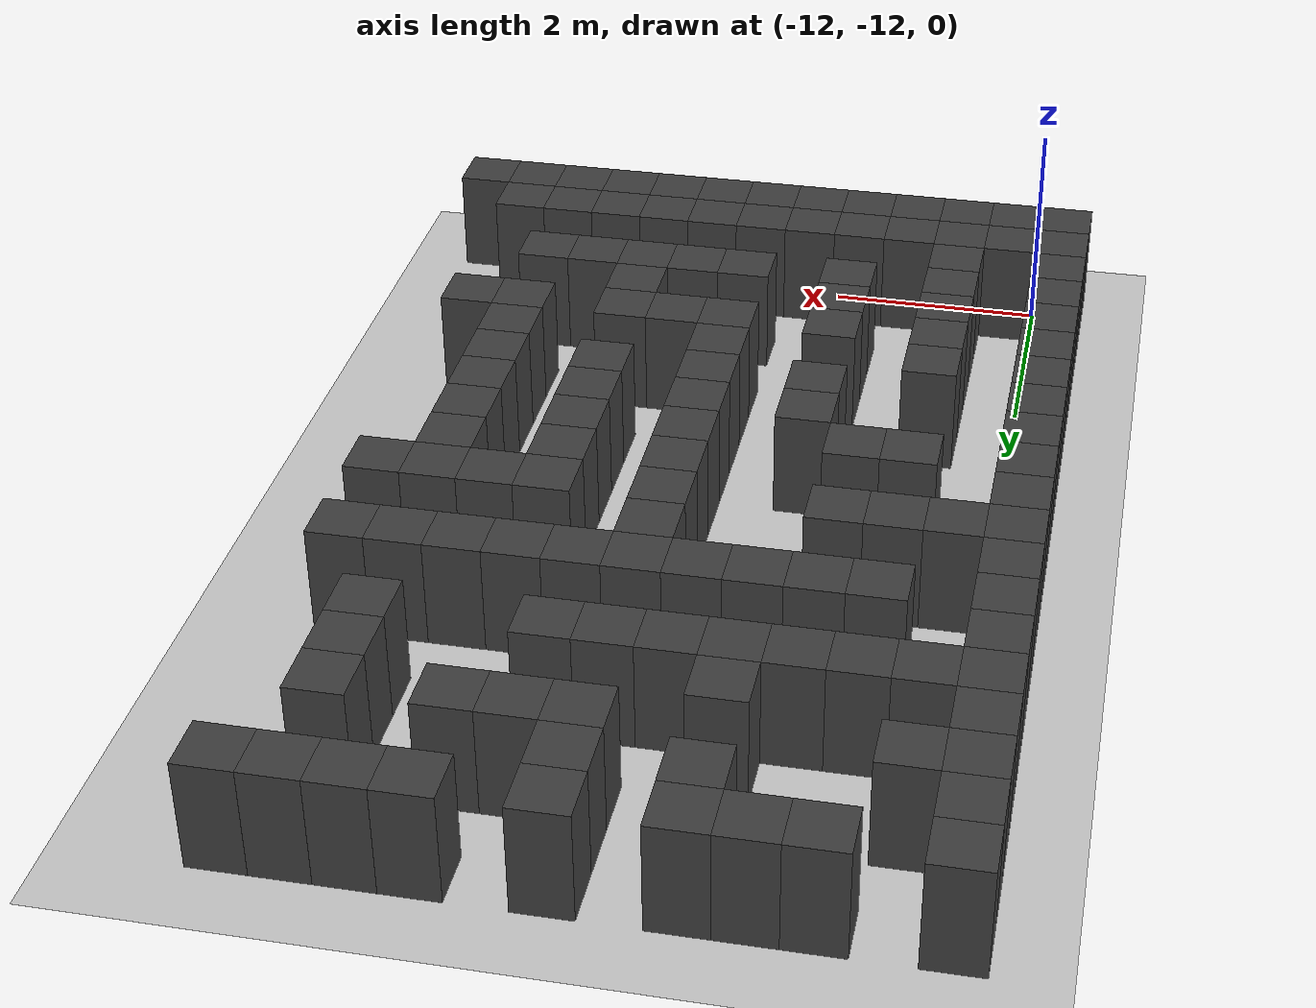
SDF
<sdf version="1.7">
 <world name="map_16668">
  <model name="ground_plane">
   <static>true</static>
   <link name="link">
    <collision name="collision">
     <geometry><plane><normal>0 0 1</normal><size>200 200</size></plane></geometry>
    </collision>
    <visual name="visual">
     <geometry><plane><normal>0 0 1</normal><size>200 200</size></plane></geometry>
     <material><ambient>0.8 0.8 0.8 1</ambient><diffuse>0.8 0.8 0.8 1</diffuse></material>
    </visual>
   </link>
  </model>
  <model name="maze_environment">
   <static>true</static>
   <link name="wall_716">
    <pose>-12.250 -2.750 0.500 0 0 0</pose>
    <collision name="col"><geometry><box><size>0.5 0.5 1.0</size></box></geometry></collision>
    <visual name="vis">
     <geometry><box><size>0.5 0.5 1.0</size></box></geometry>
     <material><ambient>0.15 0.15 0.15 1</ambient><diffuse>0.25 0.25 0.25 1</diffuse></material>
    </visual>
   </link>
   <link name="wall_717">
    <pose>-11.250 -2.750 0.500 0 0 0</pose>
    <collision name="col"><geometry><box><size>0.5 0.5 1.0</size></box></geometry></collision>
    <visual name="vis">
     <geometry><box><size>0.5 0.5 1.0</size></box></geometry>
     <material><ambient>0.15 0.15 0.15 1</ambient><diffuse>0.25 0.25 0.25 1</diffuse></material>
    </visual>
   </link>
   <link name="wall_718">
    <pose>-10.750 -2.750 0.500 0 0 0</pose>
    <collision name="col"><geometry><box><size>0.5 0.5 1.0</size></box></geometry></collision>
    <visual name="vis">
     <geometry><box><size>0.5 0.5 1.0</size></box></geometry>
     <material><ambient>0.15 0.15 0.15 1</ambient><diffuse>0.25 0.25 0.25 1</diffuse></material>
    </visual>
   </link>
   <link name="wall_719">
    <pose>-10.250 -2.750 0.500 0 0 0</pose>
    <collision name="col"><geometry><box><size>0.5 0.5 1.0</size></box></geometry></collision>
    <visual name="vis">
     <geometry><box><size>0.5 0.5 1.0</size></box></geometry>
     <material><ambient>0.15 0.15 0.15 1</ambient><diffuse>0.25 0.25 0.25 1</diffuse></material>
    </visual>
   </link>
   <link name="wall_720">
    <pose>-9.250 -2.750 0.500 0 0 0</pose>
    <collision name="col"><geometry><box><size>0.5 0.5 1.0</size></box></geometry></collision>
    <visual name="vis">
     <geometry><box><size>0.5 0.5 1.0</size></box></geometry>
     <material><ambient>0.15 0.15 0.15 1</ambient><diffuse>0.25 0.25 0.25 1</diffuse></material>
    </visual>
   </link>
   <link name="wall_721">
    <pose>-8.250 -2.750 0.500 0 0 0</pose>
    <collision name="col"><geometry><box><size>0.5 0.5 1.0</size></box></geometry></collision>
    <visual name="vis">
     <geometry><box><size>0.5 0.5 1.0</size></box></geometry>
     <material><ambient>0.15 0.15 0.15 1</ambient><diffuse>0.25 0.25 0.25 1</diffuse></material>
    </visual>
   </link>
   <link name="wall_722">
    <pose>-7.750 -2.750 0.500 0 0 0</pose>
    <collision name="col"><geometry><box><size>0.5 0.5 1.0</size></box></geometry></collision>
    <visual name="vis">
     <geometry><box><size>0.5 0.5 1.0</size></box></geometry>
     <material><ambient>0.15 0.15 0.15 1</ambient><diffuse>0.25 0.25 0.25 1</diffuse></material>
    </visual>
   </link>
   <link name="wall_723">
    <pose>-7.250 -2.750 0.500 0 0 0</pose>
    <collision name="col"><geometry><box><size>0.5 0.5 1.0</size></box></geometry></collision>
    <visual name="vis">
     <geometry><box><size>0.5 0.5 1.0</size></box></geometry>
     <material><ambient>0.15 0.15 0.15 1</ambient><diffuse>0.25 0.25 0.25 1</diffuse></material>
    </visual>
   </link>
   <link name="wall_724">
    <pose>-6.750 -2.750 0.500 0 0 0</pose>
    <collision name="col"><geometry><box><size>0.5 0.5 1.0</size></box></geometry></collision>
    <visual name="vis">
     <geometry><box><size>0.5 0.5 1.0</size></box></geometry>
     <material><ambient>0.15 0.15 0.15 1</ambient><diffuse>0.25 0.25 0.25 1</diffuse></material>
    </visual>
   </link>
   <link name="wall_753">
    <pose>-12.250 -3.250 0.500 0 0 0</pose>
    <collision name="col"><geometry><box><size>0.5 0.5 1.0</size></box></geometry></collision>
    <visual name="vis">
     <geometry><box><size>0.5 0.5 1.0</size></box></geometry>
     <material><ambient>0.15 0.15 0.15 1</ambient><diffuse>0.25 0.25 0.25 1</diffuse></material>
    </visual>
   </link>
   <link name="wall_754">
    <pose>-10.250 -3.250 0.500 0 0 0</pose>
    <collision name="col"><geometry><box><size>0.5 0.5 1.0</size></box></geometry></collision>
    <visual name="vis">
     <geometry><box><size>0.5 0.5 1.0</size></box></geometry>
     <material><ambient>0.15 0.15 0.15 1</ambient><diffuse>0.25 0.25 0.25 1</diffuse></material>
    </visual>
   </link>
   <link name="wall_755">
    <pose>-9.250 -3.250 0.500 0 0 0</pose>
    <collision name="col"><geometry><box><size>0.5 0.5 1.0</size></box></geometry></collision>
    <visual name="vis">
     <geometry><box><size>0.5 0.5 1.0</size></box></geometry>
     <material><ambient>0.15 0.15 0.15 1</ambient><diffuse>0.25 0.25 0.25 1</diffuse></material>
    </visual>
   </link>
   <link name="wall_765">
    <pose>-12.250 -3.750 0.500 0 0 0</pose>
    <collision name="col"><geometry><box><size>0.5 0.5 1.0</size></box></geometry></collision>
    <visual name="vis">
     <geometry><box><size>0.5 0.5 1.0</size></box></geometry>
     <material><ambient>0.15 0.15 0.15 1</ambient><diffuse>0.25 0.25 0.25 1</diffuse></material>
    </visual>
   </link>
   <link name="wall_766">
    <pose>-11.750 -3.750 0.500 0 0 0</pose>
    <collision name="col"><geometry><box><size>0.5 0.5 1.0</size></box></geometry></collision>
    <visual name="vis">
     <geometry><box><size>0.5 0.5 1.0</size></box></geometry>
     <material><ambient>0.15 0.15 0.15 1</ambient><diffuse>0.25 0.25 0.25 1</diffuse></material>
    </visual>
   </link>
   <link name="wall_767">
    <pose>-9.250 -3.750 0.500 0 0 0</pose>
    <collision name="col"><geometry><box><size>0.5 0.5 1.0</size></box></geometry></collision>
    <visual name="vis">
     <geometry><box><size>0.5 0.5 1.0</size></box></geometry>
     <material><ambient>0.15 0.15 0.15 1</ambient><diffuse>0.25 0.25 0.25 1</diffuse></material>
    </visual>
   </link>
   <link name="wall_768">
    <pose>-8.750 -3.750 0.500 0 0 0</pose>
    <collision name="col"><geometry><box><size>0.5 0.5 1.0</size></box></geometry></collision>
    <visual name="vis">
     <geometry><box><size>0.5 0.5 1.0</size></box></geometry>
     <material><ambient>0.15 0.15 0.15 1</ambient><diffuse>0.25 0.25 0.25 1</diffuse></material>
    </visual>
   </link>
   <link name="wall_769">
    <pose>-8.250 -3.750 0.500 0 0 0</pose>
    <collision name="col"><geometry><box><size>0.5 0.5 1.0</size></box></geometry></collision>
    <visual name="vis">
     <geometry><box><size>0.5 0.5 1.0</size></box></geometry>
     <material><ambient>0.15 0.15 0.15 1</ambient><diffuse>0.25 0.25 0.25 1</diffuse></material>
    </visual>
   </link>
   <link name="wall_770">
    <pose>-7.250 -3.750 0.500 0 0 0</pose>
    <collision name="col"><geometry><box><size>0.5 0.5 1.0</size></box></geometry></collision>
    <visual name="vis">
     <geometry><box><size>0.5 0.5 1.0</size></box></geometry>
     <material><ambient>0.15 0.15 0.15 1</ambient><diffuse>0.25 0.25 0.25 1</diffuse></material>
    </visual>
   </link>
   <link name="wall_801">
    <pose>-12.250 -4.250 0.500 0 0 0</pose>
    <collision name="col"><geometry><box><size>0.5 0.5 1.0</size></box></geometry></collision>
    <visual name="vis">
     <geometry><box><size>0.5 0.5 1.0</size></box></geometry>
     <material><ambient>0.15 0.15 0.15 1</ambient><diffuse>0.25 0.25 0.25 1</diffuse></material>
    </visual>
   </link>
   <link name="wall_802">
    <pose>-10.250 -4.250 0.500 0 0 0</pose>
    <collision name="col"><geometry><box><size>0.5 0.5 1.0</size></box></geometry></collision>
    <visual name="vis">
     <geometry><box><size>0.5 0.5 1.0</size></box></geometry>
     <material><ambient>0.15 0.15 0.15 1</ambient><diffuse>0.25 0.25 0.25 1</diffuse></material>
    </visual>
   </link>
   <link name="wall_803">
    <pose>-7.250 -4.250 0.500 0 0 0</pose>
    <collision name="col"><geometry><box><size>0.5 0.5 1.0</size></box></geometry></collision>
    <visual name="vis">
     <geometry><box><size>0.5 0.5 1.0</size></box></geometry>
     <material><ambient>0.15 0.15 0.15 1</ambient><diffuse>0.25 0.25 0.25 1</diffuse></material>
    </visual>
   </link>
   <link name="wall_813">
    <pose>-12.250 -4.750 0.500 0 0 0</pose>
    <collision name="col"><geometry><box><size>0.5 0.5 1.0</size></box></geometry></collision>
    <visual name="vis">
     <geometry><box><size>0.5 0.5 1.0</size></box></geometry>
     <material><ambient>0.15 0.15 0.15 1</ambient><diffuse>0.25 0.25 0.25 1</diffuse></material>
    </visual>
   </link>
   <link name="wall_814">
    <pose>-11.750 -4.750 0.500 0 0 0</pose>
    <collision name="col"><geometry><box><size>0.5 0.5 1.0</size></box></geometry></collision>
    <visual name="vis">
     <geometry><box><size>0.5 0.5 1.0</size></box></geometry>
     <material><ambient>0.15 0.15 0.15 1</ambient><diffuse>0.25 0.25 0.25 1</diffuse></material>
    </visual>
   </link>
   <link name="wall_815">
    <pose>-11.250 -4.750 0.500 0 0 0</pose>
    <collision name="col"><geometry><box><size>0.5 0.5 1.0</size></box></geometry></collision>
    <visual name="vis">
     <geometry><box><size>0.5 0.5 1.0</size></box></geometry>
     <material><ambient>0.15 0.15 0.15 1</ambient><diffuse>0.25 0.25 0.25 1</diffuse></material>
    </visual>
   </link>
   <link name="wall_816">
    <pose>-10.750 -4.750 0.500 0 0 0</pose>
    <collision name="col"><geometry><box><size>0.5 0.5 1.0</size></box></geometry></collision>
    <visual name="vis">
     <geometry><box><size>0.5 0.5 1.0</size></box></geometry>
     <material><ambient>0.15 0.15 0.15 1</ambient><diffuse>0.25 0.25 0.25 1</diffuse></material>
    </visual>
   </link>
   <link name="wall_817">
    <pose>-10.250 -4.750 0.500 0 0 0</pose>
    <collision name="col"><geometry><box><size>0.5 0.5 1.0</size></box></geometry></collision>
    <visual name="vis">
     <geometry><box><size>0.5 0.5 1.0</size></box></geometry>
     <material><ambient>0.15 0.15 0.15 1</ambient><diffuse>0.25 0.25 0.25 1</diffuse></material>
    </visual>
   </link>
   <link name="wall_818">
    <pose>-9.750 -4.750 0.500 0 0 0</pose>
    <collision name="col"><geometry><box><size>0.5 0.5 1.0</size></box></geometry></collision>
    <visual name="vis">
     <geometry><box><size>0.5 0.5 1.0</size></box></geometry>
     <material><ambient>0.15 0.15 0.15 1</ambient><diffuse>0.25 0.25 0.25 1</diffuse></material>
    </visual>
   </link>
   <link name="wall_819">
    <pose>-9.250 -4.750 0.500 0 0 0</pose>
    <collision name="col"><geometry><box><size>0.5 0.5 1.0</size></box></geometry></collision>
    <visual name="vis">
     <geometry><box><size>0.5 0.5 1.0</size></box></geometry>
     <material><ambient>0.15 0.15 0.15 1</ambient><diffuse>0.25 0.25 0.25 1</diffuse></material>
    </visual>
   </link>
   <link name="wall_820">
    <pose>-8.750 -4.750 0.500 0 0 0</pose>
    <collision name="col"><geometry><box><size>0.5 0.5 1.0</size></box></geometry></collision>
    <visual name="vis">
     <geometry><box><size>0.5 0.5 1.0</size></box></geometry>
     <material><ambient>0.15 0.15 0.15 1</ambient><diffuse>0.25 0.25 0.25 1</diffuse></material>
    </visual>
   </link>
   <link name="wall_821">
    <pose>-7.250 -4.750 0.500 0 0 0</pose>
    <collision name="col"><geometry><box><size>0.5 0.5 1.0</size></box></geometry></collision>
    <visual name="vis">
     <geometry><box><size>0.5 0.5 1.0</size></box></geometry>
     <material><ambient>0.15 0.15 0.15 1</ambient><diffuse>0.25 0.25 0.25 1</diffuse></material>
    </visual>
   </link>
   <link name="wall_847">
    <pose>-12.250 -5.250 0.500 0 0 0</pose>
    <collision name="col"><geometry><box><size>0.5 0.5 1.0</size></box></geometry></collision>
    <visual name="vis">
     <geometry><box><size>0.5 0.5 1.0</size></box></geometry>
     <material><ambient>0.15 0.15 0.15 1</ambient><diffuse>0.25 0.25 0.25 1</diffuse></material>
    </visual>
   </link>
   <link name="wall_863">
    <pose>-12.250 -5.750 0.500 0 0 0</pose>
    <collision name="col"><geometry><box><size>0.5 0.5 1.0</size></box></geometry></collision>
    <visual name="vis">
     <geometry><box><size>0.5 0.5 1.0</size></box></geometry>
     <material><ambient>0.15 0.15 0.15 1</ambient><diffuse>0.25 0.25 0.25 1</diffuse></material>
    </visual>
   </link>
   <link name="wall_864">
    <pose>-11.250 -5.750 0.500 0 0 0</pose>
    <collision name="col"><geometry><box><size>0.5 0.5 1.0</size></box></geometry></collision>
    <visual name="vis">
     <geometry><box><size>0.5 0.5 1.0</size></box></geometry>
     <material><ambient>0.15 0.15 0.15 1</ambient><diffuse>0.25 0.25 0.25 1</diffuse></material>
    </visual>
   </link>
   <link name="wall_865">
    <pose>-10.750 -5.750 0.500 0 0 0</pose>
    <collision name="col"><geometry><box><size>0.5 0.5 1.0</size></box></geometry></collision>
    <visual name="vis">
     <geometry><box><size>0.5 0.5 1.0</size></box></geometry>
     <material><ambient>0.15 0.15 0.15 1</ambient><diffuse>0.25 0.25 0.25 1</diffuse></material>
    </visual>
   </link>
   <link name="wall_866">
    <pose>-10.250 -5.750 0.500 0 0 0</pose>
    <collision name="col"><geometry><box><size>0.5 0.5 1.0</size></box></geometry></collision>
    <visual name="vis">
     <geometry><box><size>0.5 0.5 1.0</size></box></geometry>
     <material><ambient>0.15 0.15 0.15 1</ambient><diffuse>0.25 0.25 0.25 1</diffuse></material>
    </visual>
   </link>
   <link name="wall_867">
    <pose>-9.750 -5.750 0.500 0 0 0</pose>
    <collision name="col"><geometry><box><size>0.5 0.5 1.0</size></box></geometry></collision>
    <visual name="vis">
     <geometry><box><size>0.5 0.5 1.0</size></box></geometry>
     <material><ambient>0.15 0.15 0.15 1</ambient><diffuse>0.25 0.25 0.25 1</diffuse></material>
    </visual>
   </link>
   <link name="wall_868">
    <pose>-9.250 -5.750 0.500 0 0 0</pose>
    <collision name="col"><geometry><box><size>0.5 0.5 1.0</size></box></geometry></collision>
    <visual name="vis">
     <geometry><box><size>0.5 0.5 1.0</size></box></geometry>
     <material><ambient>0.15 0.15 0.15 1</ambient><diffuse>0.25 0.25 0.25 1</diffuse></material>
    </visual>
   </link>
   <link name="wall_869">
    <pose>-8.750 -5.750 0.500 0 0 0</pose>
    <collision name="col"><geometry><box><size>0.5 0.5 1.0</size></box></geometry></collision>
    <visual name="vis">
     <geometry><box><size>0.5 0.5 1.0</size></box></geometry>
     <material><ambient>0.15 0.15 0.15 1</ambient><diffuse>0.25 0.25 0.25 1</diffuse></material>
    </visual>
   </link>
   <link name="wall_870">
    <pose>-8.250 -5.750 0.500 0 0 0</pose>
    <collision name="col"><geometry><box><size>0.5 0.5 1.0</size></box></geometry></collision>
    <visual name="vis">
     <geometry><box><size>0.5 0.5 1.0</size></box></geometry>
     <material><ambient>0.15 0.15 0.15 1</ambient><diffuse>0.25 0.25 0.25 1</diffuse></material>
    </visual>
   </link>
   <link name="wall_871">
    <pose>-7.750 -5.750 0.500 0 0 0</pose>
    <collision name="col"><geometry><box><size>0.5 0.5 1.0</size></box></geometry></collision>
    <visual name="vis">
     <geometry><box><size>0.5 0.5 1.0</size></box></geometry>
     <material><ambient>0.15 0.15 0.15 1</ambient><diffuse>0.25 0.25 0.25 1</diffuse></material>
    </visual>
   </link>
   <link name="wall_872">
    <pose>-7.250 -5.750 0.500 0 0 0</pose>
    <collision name="col"><geometry><box><size>0.5 0.5 1.0</size></box></geometry></collision>
    <visual name="vis">
     <geometry><box><size>0.5 0.5 1.0</size></box></geometry>
     <material><ambient>0.15 0.15 0.15 1</ambient><diffuse>0.25 0.25 0.25 1</diffuse></material>
    </visual>
   </link>
   <link name="wall_873">
    <pose>-6.750 -5.750 0.500 0 0 0</pose>
    <collision name="col"><geometry><box><size>0.5 0.5 1.0</size></box></geometry></collision>
    <visual name="vis">
     <geometry><box><size>0.5 0.5 1.0</size></box></geometry>
     <material><ambient>0.15 0.15 0.15 1</ambient><diffuse>0.25 0.25 0.25 1</diffuse></material>
    </visual>
   </link>
   <link name="wall_895">
    <pose>-12.250 -6.250 0.500 0 0 0</pose>
    <collision name="col"><geometry><box><size>0.5 0.5 1.0</size></box></geometry></collision>
    <visual name="vis">
     <geometry><box><size>0.5 0.5 1.0</size></box></geometry>
     <material><ambient>0.15 0.15 0.15 1</ambient><diffuse>0.25 0.25 0.25 1</diffuse></material>
    </visual>
   </link>
   <link name="wall_896">
    <pose>-9.250 -6.250 0.500 0 0 0</pose>
    <collision name="col"><geometry><box><size>0.5 0.5 1.0</size></box></geometry></collision>
    <visual name="vis">
     <geometry><box><size>0.5 0.5 1.0</size></box></geometry>
     <material><ambient>0.15 0.15 0.15 1</ambient><diffuse>0.25 0.25 0.25 1</diffuse></material>
    </visual>
   </link>
   <link name="wall_910">
    <pose>-12.250 -6.750 0.500 0 0 0</pose>
    <collision name="col"><geometry><box><size>0.5 0.5 1.0</size></box></geometry></collision>
    <visual name="vis">
     <geometry><box><size>0.5 0.5 1.0</size></box></geometry>
     <material><ambient>0.15 0.15 0.15 1</ambient><diffuse>0.25 0.25 0.25 1</diffuse></material>
    </visual>
   </link>
   <link name="wall_911">
    <pose>-11.750 -6.750 0.500 0 0 0</pose>
    <collision name="col"><geometry><box><size>0.5 0.5 1.0</size></box></geometry></collision>
    <visual name="vis">
     <geometry><box><size>0.5 0.5 1.0</size></box></geometry>
     <material><ambient>0.15 0.15 0.15 1</ambient><diffuse>0.25 0.25 0.25 1</diffuse></material>
    </visual>
   </link>
   <link name="wall_912">
    <pose>-11.250 -6.750 0.500 0 0 0</pose>
    <collision name="col"><geometry><box><size>0.5 0.5 1.0</size></box></geometry></collision>
    <visual name="vis">
     <geometry><box><size>0.5 0.5 1.0</size></box></geometry>
     <material><ambient>0.15 0.15 0.15 1</ambient><diffuse>0.25 0.25 0.25 1</diffuse></material>
    </visual>
   </link>
   <link name="wall_913">
    <pose>-10.750 -6.750 0.500 0 0 0</pose>
    <collision name="col"><geometry><box><size>0.5 0.5 1.0</size></box></geometry></collision>
    <visual name="vis">
     <geometry><box><size>0.5 0.5 1.0</size></box></geometry>
     <material><ambient>0.15 0.15 0.15 1</ambient><diffuse>0.25 0.25 0.25 1</diffuse></material>
    </visual>
   </link>
   <link name="wall_914">
    <pose>-9.250 -6.750 0.500 0 0 0</pose>
    <collision name="col"><geometry><box><size>0.5 0.5 1.0</size></box></geometry></collision>
    <visual name="vis">
     <geometry><box><size>0.5 0.5 1.0</size></box></geometry>
     <material><ambient>0.15 0.15 0.15 1</ambient><diffuse>0.25 0.25 0.25 1</diffuse></material>
    </visual>
   </link>
   <link name="wall_915">
    <pose>-8.250 -6.750 0.500 0 0 0</pose>
    <collision name="col"><geometry><box><size>0.5 0.5 1.0</size></box></geometry></collision>
    <visual name="vis">
     <geometry><box><size>0.5 0.5 1.0</size></box></geometry>
     <material><ambient>0.15 0.15 0.15 1</ambient><diffuse>0.25 0.25 0.25 1</diffuse></material>
    </visual>
   </link>
   <link name="wall_916">
    <pose>-7.750 -6.750 0.500 0 0 0</pose>
    <collision name="col"><geometry><box><size>0.5 0.5 1.0</size></box></geometry></collision>
    <visual name="vis">
     <geometry><box><size>0.5 0.5 1.0</size></box></geometry>
     <material><ambient>0.15 0.15 0.15 1</ambient><diffuse>0.25 0.25 0.25 1</diffuse></material>
    </visual>
   </link>
   <link name="wall_917">
    <pose>-7.250 -6.750 0.500 0 0 0</pose>
    <collision name="col"><geometry><box><size>0.5 0.5 1.0</size></box></geometry></collision>
    <visual name="vis">
     <geometry><box><size>0.5 0.5 1.0</size></box></geometry>
     <material><ambient>0.15 0.15 0.15 1</ambient><diffuse>0.25 0.25 0.25 1</diffuse></material>
    </visual>
   </link>
   <link name="wall_918">
    <pose>-6.750 -6.750 0.500 0 0 0</pose>
    <collision name="col"><geometry><box><size>0.5 0.5 1.0</size></box></geometry></collision>
    <visual name="vis">
     <geometry><box><size>0.5 0.5 1.0</size></box></geometry>
     <material><ambient>0.15 0.15 0.15 1</ambient><diffuse>0.25 0.25 0.25 1</diffuse></material>
    </visual>
   </link>
   <link name="wall_941">
    <pose>-12.250 -7.250 0.500 0 0 0</pose>
    <collision name="col"><geometry><box><size>0.5 0.5 1.0</size></box></geometry></collision>
    <visual name="vis">
     <geometry><box><size>0.5 0.5 1.0</size></box></geometry>
     <material><ambient>0.15 0.15 0.15 1</ambient><diffuse>0.25 0.25 0.25 1</diffuse></material>
    </visual>
   </link>
   <link name="wall_942">
    <pose>-9.250 -7.250 0.500 0 0 0</pose>
    <collision name="col"><geometry><box><size>0.5 0.5 1.0</size></box></geometry></collision>
    <visual name="vis">
     <geometry><box><size>0.5 0.5 1.0</size></box></geometry>
     <material><ambient>0.15 0.15 0.15 1</ambient><diffuse>0.25 0.25 0.25 1</diffuse></material>
    </visual>
   </link>
   <link name="wall_943">
    <pose>-8.250 -7.250 0.500 0 0 0</pose>
    <collision name="col"><geometry><box><size>0.5 0.5 1.0</size></box></geometry></collision>
    <visual name="vis">
     <geometry><box><size>0.5 0.5 1.0</size></box></geometry>
     <material><ambient>0.15 0.15 0.15 1</ambient><diffuse>0.25 0.25 0.25 1</diffuse></material>
    </visual>
   </link>
   <link name="wall_944">
    <pose>-7.250 -7.250 0.500 0 0 0</pose>
    <collision name="col"><geometry><box><size>0.5 0.5 1.0</size></box></geometry></collision>
    <visual name="vis">
     <geometry><box><size>0.5 0.5 1.0</size></box></geometry>
     <material><ambient>0.15 0.15 0.15 1</ambient><diffuse>0.25 0.25 0.25 1</diffuse></material>
    </visual>
   </link>
   <link name="wall_956">
    <pose>-12.250 -7.750 0.500 0 0 0</pose>
    <collision name="col"><geometry><box><size>0.5 0.5 1.0</size></box></geometry></collision>
    <visual name="vis">
     <geometry><box><size>0.5 0.5 1.0</size></box></geometry>
     <material><ambient>0.15 0.15 0.15 1</ambient><diffuse>0.25 0.25 0.25 1</diffuse></material>
    </visual>
   </link>
   <link name="wall_957">
    <pose>-11.250 -7.750 0.500 0 0 0</pose>
    <collision name="col"><geometry><box><size>0.5 0.5 1.0</size></box></geometry></collision>
    <visual name="vis">
     <geometry><box><size>0.5 0.5 1.0</size></box></geometry>
     <material><ambient>0.15 0.15 0.15 1</ambient><diffuse>0.25 0.25 0.25 1</diffuse></material>
    </visual>
   </link>
   <link name="wall_958">
    <pose>-10.750 -7.750 0.500 0 0 0</pose>
    <collision name="col"><geometry><box><size>0.5 0.5 1.0</size></box></geometry></collision>
    <visual name="vis">
     <geometry><box><size>0.5 0.5 1.0</size></box></geometry>
     <material><ambient>0.15 0.15 0.15 1</ambient><diffuse>0.25 0.25 0.25 1</diffuse></material>
    </visual>
   </link>
   <link name="wall_959">
    <pose>-9.250 -7.750 0.500 0 0 0</pose>
    <collision name="col"><geometry><box><size>0.5 0.5 1.0</size></box></geometry></collision>
    <visual name="vis">
     <geometry><box><size>0.5 0.5 1.0</size></box></geometry>
     <material><ambient>0.15 0.15 0.15 1</ambient><diffuse>0.25 0.25 0.25 1</diffuse></material>
    </visual>
   </link>
   <link name="wall_960">
    <pose>-8.250 -7.750 0.500 0 0 0</pose>
    <collision name="col"><geometry><box><size>0.5 0.5 1.0</size></box></geometry></collision>
    <visual name="vis">
     <geometry><box><size>0.5 0.5 1.0</size></box></geometry>
     <material><ambient>0.15 0.15 0.15 1</ambient><diffuse>0.25 0.25 0.25 1</diffuse></material>
    </visual>
   </link>
   <link name="wall_961">
    <pose>-7.250 -7.750 0.500 0 0 0</pose>
    <collision name="col"><geometry><box><size>0.5 0.5 1.0</size></box></geometry></collision>
    <visual name="vis">
     <geometry><box><size>0.5 0.5 1.0</size></box></geometry>
     <material><ambient>0.15 0.15 0.15 1</ambient><diffuse>0.25 0.25 0.25 1</diffuse></material>
    </visual>
   </link>
   <link name="wall_991">
    <pose>-12.250 -8.250 0.500 0 0 0</pose>
    <collision name="col"><geometry><box><size>0.5 0.5 1.0</size></box></geometry></collision>
    <visual name="vis">
     <geometry><box><size>0.5 0.5 1.0</size></box></geometry>
     <material><ambient>0.15 0.15 0.15 1</ambient><diffuse>0.25 0.25 0.25 1</diffuse></material>
    </visual>
   </link>
   <link name="wall_992">
    <pose>-10.250 -8.250 0.500 0 0 0</pose>
    <collision name="col"><geometry><box><size>0.5 0.5 1.0</size></box></geometry></collision>
    <visual name="vis">
     <geometry><box><size>0.5 0.5 1.0</size></box></geometry>
     <material><ambient>0.15 0.15 0.15 1</ambient><diffuse>0.25 0.25 0.25 1</diffuse></material>
    </visual>
   </link>
   <link name="wall_993">
    <pose>-9.250 -8.250 0.500 0 0 0</pose>
    <collision name="col"><geometry><box><size>0.5 0.5 1.0</size></box></geometry></collision>
    <visual name="vis">
     <geometry><box><size>0.5 0.5 1.0</size></box></geometry>
     <material><ambient>0.15 0.15 0.15 1</ambient><diffuse>0.25 0.25 0.25 1</diffuse></material>
    </visual>
   </link>
   <link name="wall_994">
    <pose>-8.250 -8.250 0.500 0 0 0</pose>
    <collision name="col"><geometry><box><size>0.5 0.5 1.0</size></box></geometry></collision>
    <visual name="vis">
     <geometry><box><size>0.5 0.5 1.0</size></box></geometry>
     <material><ambient>0.15 0.15 0.15 1</ambient><diffuse>0.25 0.25 0.25 1</diffuse></material>
    </visual>
   </link>
   <link name="wall_995">
    <pose>-7.250 -8.250 0.500 0 0 0</pose>
    <collision name="col"><geometry><box><size>0.5 0.5 1.0</size></box></geometry></collision>
    <visual name="vis">
     <geometry><box><size>0.5 0.5 1.0</size></box></geometry>
     <material><ambient>0.15 0.15 0.15 1</ambient><diffuse>0.25 0.25 0.25 1</diffuse></material>
    </visual>
   </link>
   <link name="wall_1006">
    <pose>-12.250 -8.750 0.500 0 0 0</pose>
    <collision name="col"><geometry><box><size>0.5 0.5 1.0</size></box></geometry></collision>
    <visual name="vis">
     <geometry><box><size>0.5 0.5 1.0</size></box></geometry>
     <material><ambient>0.15 0.15 0.15 1</ambient><diffuse>0.25 0.25 0.25 1</diffuse></material>
    </visual>
   </link>
   <link name="wall_1007">
    <pose>-10.250 -8.750 0.500 0 0 0</pose>
    <collision name="col"><geometry><box><size>0.5 0.5 1.0</size></box></geometry></collision>
    <visual name="vis">
     <geometry><box><size>0.5 0.5 1.0</size></box></geometry>
     <material><ambient>0.15 0.15 0.15 1</ambient><diffuse>0.25 0.25 0.25 1</diffuse></material>
    </visual>
   </link>
   <link name="wall_1008">
    <pose>-9.250 -8.750 0.500 0 0 0</pose>
    <collision name="col"><geometry><box><size>0.5 0.5 1.0</size></box></geometry></collision>
    <visual name="vis">
     <geometry><box><size>0.5 0.5 1.0</size></box></geometry>
     <material><ambient>0.15 0.15 0.15 1</ambient><diffuse>0.25 0.25 0.25 1</diffuse></material>
    </visual>
   </link>
   <link name="wall_1009">
    <pose>-8.250 -8.750 0.500 0 0 0</pose>
    <collision name="col"><geometry><box><size>0.5 0.5 1.0</size></box></geometry></collision>
    <visual name="vis">
     <geometry><box><size>0.5 0.5 1.0</size></box></geometry>
     <material><ambient>0.15 0.15 0.15 1</ambient><diffuse>0.25 0.25 0.25 1</diffuse></material>
    </visual>
   </link>
   <link name="wall_1010">
    <pose>-7.250 -8.750 0.500 0 0 0</pose>
    <collision name="col"><geometry><box><size>0.5 0.5 1.0</size></box></geometry></collision>
    <visual name="vis">
     <geometry><box><size>0.5 0.5 1.0</size></box></geometry>
     <material><ambient>0.15 0.15 0.15 1</ambient><diffuse>0.25 0.25 0.25 1</diffuse></material>
    </visual>
   </link>
   <link name="wall_1040">
    <pose>-12.250 -9.250 0.500 0 0 0</pose>
    <collision name="col"><geometry><box><size>0.5 0.5 1.0</size></box></geometry></collision>
    <visual name="vis">
     <geometry><box><size>0.5 0.5 1.0</size></box></geometry>
     <material><ambient>0.15 0.15 0.15 1</ambient><diffuse>0.25 0.25 0.25 1</diffuse></material>
    </visual>
   </link>
   <link name="wall_1041">
    <pose>-11.250 -9.250 0.500 0 0 0</pose>
    <collision name="col"><geometry><box><size>0.5 0.5 1.0</size></box></geometry></collision>
    <visual name="vis">
     <geometry><box><size>0.5 0.5 1.0</size></box></geometry>
     <material><ambient>0.15 0.15 0.15 1</ambient><diffuse>0.25 0.25 0.25 1</diffuse></material>
    </visual>
   </link>
   <link name="wall_1042">
    <pose>-9.250 -9.250 0.500 0 0 0</pose>
    <collision name="col"><geometry><box><size>0.5 0.5 1.0</size></box></geometry></collision>
    <visual name="vis">
     <geometry><box><size>0.5 0.5 1.0</size></box></geometry>
     <material><ambient>0.15 0.15 0.15 1</ambient><diffuse>0.25 0.25 0.25 1</diffuse></material>
    </visual>
   </link>
   <link name="wall_1043">
    <pose>-7.250 -9.250 0.500 0 0 0</pose>
    <collision name="col"><geometry><box><size>0.5 0.5 1.0</size></box></geometry></collision>
    <visual name="vis">
     <geometry><box><size>0.5 0.5 1.0</size></box></geometry>
     <material><ambient>0.15 0.15 0.15 1</ambient><diffuse>0.25 0.25 0.25 1</diffuse></material>
    </visual>
   </link>
   <link name="wall_1055">
    <pose>-12.250 -9.750 0.500 0 0 0</pose>
    <collision name="col"><geometry><box><size>0.5 0.5 1.0</size></box></geometry></collision>
    <visual name="vis">
     <geometry><box><size>0.5 0.5 1.0</size></box></geometry>
     <material><ambient>0.15 0.15 0.15 1</ambient><diffuse>0.25 0.25 0.25 1</diffuse></material>
    </visual>
   </link>
   <link name="wall_1056">
    <pose>-11.250 -9.750 0.500 0 0 0</pose>
    <collision name="col"><geometry><box><size>0.5 0.5 1.0</size></box></geometry></collision>
    <visual name="vis">
     <geometry><box><size>0.5 0.5 1.0</size></box></geometry>
     <material><ambient>0.15 0.15 0.15 1</ambient><diffuse>0.25 0.25 0.25 1</diffuse></material>
    </visual>
   </link>
   <link name="wall_1057">
    <pose>-10.250 -9.750 0.500 0 0 0</pose>
    <collision name="col"><geometry><box><size>0.5 0.5 1.0</size></box></geometry></collision>
    <visual name="vis">
     <geometry><box><size>0.5 0.5 1.0</size></box></geometry>
     <material><ambient>0.15 0.15 0.15 1</ambient><diffuse>0.25 0.25 0.25 1</diffuse></material>
    </visual>
   </link>
   <link name="wall_1058">
    <pose>-9.250 -9.750 0.500 0 0 0</pose>
    <collision name="col"><geometry><box><size>0.5 0.5 1.0</size></box></geometry></collision>
    <visual name="vis">
     <geometry><box><size>0.5 0.5 1.0</size></box></geometry>
     <material><ambient>0.15 0.15 0.15 1</ambient><diffuse>0.25 0.25 0.25 1</diffuse></material>
    </visual>
   </link>
   <link name="wall_1059">
    <pose>-8.750 -9.750 0.500 0 0 0</pose>
    <collision name="col"><geometry><box><size>0.5 0.5 1.0</size></box></geometry></collision>
    <visual name="vis">
     <geometry><box><size>0.5 0.5 1.0</size></box></geometry>
     <material><ambient>0.15 0.15 0.15 1</ambient><diffuse>0.25 0.25 0.25 1</diffuse></material>
    </visual>
   </link>
   <link name="wall_1060">
    <pose>-8.250 -9.750 0.500 0 0 0</pose>
    <collision name="col"><geometry><box><size>0.5 0.5 1.0</size></box></geometry></collision>
    <visual name="vis">
     <geometry><box><size>0.5 0.5 1.0</size></box></geometry>
     <material><ambient>0.15 0.15 0.15 1</ambient><diffuse>0.25 0.25 0.25 1</diffuse></material>
    </visual>
   </link>
   <link name="wall_1061">
    <pose>-7.250 -9.750 0.500 0 0 0</pose>
    <collision name="col"><geometry><box><size>0.5 0.5 1.0</size></box></geometry></collision>
    <visual name="vis">
     <geometry><box><size>0.5 0.5 1.0</size></box></geometry>
     <material><ambient>0.15 0.15 0.15 1</ambient><diffuse>0.25 0.25 0.25 1</diffuse></material>
    </visual>
   </link>
   <link name="wall_1062">
    <pose>-6.750 -9.750 0.500 0 0 0</pose>
    <collision name="col"><geometry><box><size>0.5 0.5 1.0</size></box></geometry></collision>
    <visual name="vis">
     <geometry><box><size>0.5 0.5 1.0</size></box></geometry>
     <material><ambient>0.15 0.15 0.15 1</ambient><diffuse>0.25 0.25 0.25 1</diffuse></material>
    </visual>
   </link>
   <link name="wall_1088">
    <pose>-12.250 -10.250 0.500 0 0 0</pose>
    <collision name="col"><geometry><box><size>0.5 0.5 1.0</size></box></geometry></collision>
    <visual name="vis">
     <geometry><box><size>0.5 0.5 1.0</size></box></geometry>
     <material><ambient>0.15 0.15 0.15 1</ambient><diffuse>0.25 0.25 0.25 1</diffuse></material>
    </visual>
   </link>
   <link name="wall_1089">
    <pose>-11.250 -10.250 0.500 0 0 0</pose>
    <collision name="col"><geometry><box><size>0.5 0.5 1.0</size></box></geometry></collision>
    <visual name="vis">
     <geometry><box><size>0.5 0.5 1.0</size></box></geometry>
     <material><ambient>0.15 0.15 0.15 1</ambient><diffuse>0.25 0.25 0.25 1</diffuse></material>
    </visual>
   </link>
   <link name="wall_1090">
    <pose>-10.250 -10.250 0.500 0 0 0</pose>
    <collision name="col"><geometry><box><size>0.5 0.5 1.0</size></box></geometry></collision>
    <visual name="vis">
     <geometry><box><size>0.5 0.5 1.0</size></box></geometry>
     <material><ambient>0.15 0.15 0.15 1</ambient><diffuse>0.25 0.25 0.25 1</diffuse></material>
    </visual>
   </link>
   <link name="wall_1091">
    <pose>-8.250 -10.250 0.500 0 0 0</pose>
    <collision name="col"><geometry><box><size>0.5 0.5 1.0</size></box></geometry></collision>
    <visual name="vis">
     <geometry><box><size>0.5 0.5 1.0</size></box></geometry>
     <material><ambient>0.15 0.15 0.15 1</ambient><diffuse>0.25 0.25 0.25 1</diffuse></material>
    </visual>
   </link>
   <link name="wall_1104">
    <pose>-12.250 -10.750 0.500 0 0 0</pose>
    <collision name="col"><geometry><box><size>0.5 0.5 1.0</size></box></geometry></collision>
    <visual name="vis">
     <geometry><box><size>0.5 0.5 1.0</size></box></geometry>
     <material><ambient>0.15 0.15 0.15 1</ambient><diffuse>0.25 0.25 0.25 1</diffuse></material>
    </visual>
   </link>
   <link name="wall_1105">
    <pose>-11.250 -10.750 0.500 0 0 0</pose>
    <collision name="col"><geometry><box><size>0.5 0.5 1.0</size></box></geometry></collision>
    <visual name="vis">
     <geometry><box><size>0.5 0.5 1.0</size></box></geometry>
     <material><ambient>0.15 0.15 0.15 1</ambient><diffuse>0.25 0.25 0.25 1</diffuse></material>
    </visual>
   </link>
   <link name="wall_1106">
    <pose>-10.250 -10.750 0.500 0 0 0</pose>
    <collision name="col"><geometry><box><size>0.5 0.5 1.0</size></box></geometry></collision>
    <visual name="vis">
     <geometry><box><size>0.5 0.5 1.0</size></box></geometry>
     <material><ambient>0.15 0.15 0.15 1</ambient><diffuse>0.25 0.25 0.25 1</diffuse></material>
    </visual>
   </link>
   <link name="wall_1107">
    <pose>-9.250 -10.750 0.500 0 0 0</pose>
    <collision name="col"><geometry><box><size>0.5 0.5 1.0</size></box></geometry></collision>
    <visual name="vis">
     <geometry><box><size>0.5 0.5 1.0</size></box></geometry>
     <material><ambient>0.15 0.15 0.15 1</ambient><diffuse>0.25 0.25 0.25 1</diffuse></material>
    </visual>
   </link>
   <link name="wall_1108">
    <pose>-8.750 -10.750 0.500 0 0 0</pose>
    <collision name="col"><geometry><box><size>0.5 0.5 1.0</size></box></geometry></collision>
    <visual name="vis">
     <geometry><box><size>0.5 0.5 1.0</size></box></geometry>
     <material><ambient>0.15 0.15 0.15 1</ambient><diffuse>0.25 0.25 0.25 1</diffuse></material>
    </visual>
   </link>
   <link name="wall_1109">
    <pose>-8.250 -10.750 0.500 0 0 0</pose>
    <collision name="col"><geometry><box><size>0.5 0.5 1.0</size></box></geometry></collision>
    <visual name="vis">
     <geometry><box><size>0.5 0.5 1.0</size></box></geometry>
     <material><ambient>0.15 0.15 0.15 1</ambient><diffuse>0.25 0.25 0.25 1</diffuse></material>
    </visual>
   </link>
   <link name="wall_1110">
    <pose>-7.750 -10.750 0.500 0 0 0</pose>
    <collision name="col"><geometry><box><size>0.5 0.5 1.0</size></box></geometry></collision>
    <visual name="vis">
     <geometry><box><size>0.5 0.5 1.0</size></box></geometry>
     <material><ambient>0.15 0.15 0.15 1</ambient><diffuse>0.25 0.25 0.25 1</diffuse></material>
    </visual>
   </link>
   <link name="wall_1111">
    <pose>-7.250 -10.750 0.500 0 0 0</pose>
    <collision name="col"><geometry><box><size>0.5 0.5 1.0</size></box></geometry></collision>
    <visual name="vis">
     <geometry><box><size>0.5 0.5 1.0</size></box></geometry>
     <material><ambient>0.15 0.15 0.15 1</ambient><diffuse>0.25 0.25 0.25 1</diffuse></material>
    </visual>
   </link>
   <link name="wall_1141">
    <pose>-12.250 -11.250 0.500 0 0 0</pose>
    <collision name="col"><geometry><box><size>0.5 0.5 1.0</size></box></geometry></collision>
    <visual name="vis">
     <geometry><box><size>0.5 0.5 1.0</size></box></geometry>
     <material><ambient>0.15 0.15 0.15 1</ambient><diffuse>0.25 0.25 0.25 1</diffuse></material>
    </visual>
   </link>
   <link name="wall_1142">
    <pose>-11.250 -11.250 0.500 0 0 0</pose>
    <collision name="col"><geometry><box><size>0.5 0.5 1.0</size></box></geometry></collision>
    <visual name="vis">
     <geometry><box><size>0.5 0.5 1.0</size></box></geometry>
     <material><ambient>0.15 0.15 0.15 1</ambient><diffuse>0.25 0.25 0.25 1</diffuse></material>
    </visual>
   </link>
   <link name="wall_1147">
    <pose>-12.250 -11.750 0.500 0 0 0</pose>
    <collision name="col"><geometry><box><size>0.5 0.5 1.0</size></box></geometry></collision>
    <visual name="vis">
     <geometry><box><size>0.5 0.5 1.0</size></box></geometry>
     <material><ambient>0.15 0.15 0.15 1</ambient><diffuse>0.25 0.25 0.25 1</diffuse></material>
    </visual>
   </link>
   <link name="wall_1148">
    <pose>-11.750 -11.750 0.500 0 0 0</pose>
    <collision name="col"><geometry><box><size>0.5 0.5 1.0</size></box></geometry></collision>
    <visual name="vis">
     <geometry><box><size>0.5 0.5 1.0</size></box></geometry>
     <material><ambient>0.15 0.15 0.15 1</ambient><diffuse>0.25 0.25 0.25 1</diffuse></material>
    </visual>
   </link>
   <link name="wall_1149">
    <pose>-11.250 -11.750 0.500 0 0 0</pose>
    <collision name="col"><geometry><box><size>0.5 0.5 1.0</size></box></geometry></collision>
    <visual name="vis">
     <geometry><box><size>0.5 0.5 1.0</size></box></geometry>
     <material><ambient>0.15 0.15 0.15 1</ambient><diffuse>0.25 0.25 0.25 1</diffuse></material>
    </visual>
   </link>
   <link name="wall_1150">
    <pose>-10.750 -11.750 0.500 0 0 0</pose>
    <collision name="col"><geometry><box><size>0.5 0.5 1.0</size></box></geometry></collision>
    <visual name="vis">
     <geometry><box><size>0.5 0.5 1.0</size></box></geometry>
     <material><ambient>0.15 0.15 0.15 1</ambient><diffuse>0.25 0.25 0.25 1</diffuse></material>
    </visual>
   </link>
   <link name="wall_1151">
    <pose>-10.250 -11.750 0.500 0 0 0</pose>
    <collision name="col"><geometry><box><size>0.5 0.5 1.0</size></box></geometry></collision>
    <visual name="vis">
     <geometry><box><size>0.5 0.5 1.0</size></box></geometry>
     <material><ambient>0.15 0.15 0.15 1</ambient><diffuse>0.25 0.25 0.25 1</diffuse></material>
    </visual>
   </link>
   <link name="wall_1152">
    <pose>-9.750 -11.750 0.500 0 0 0</pose>
    <collision name="col"><geometry><box><size>0.5 0.5 1.0</size></box></geometry></collision>
    <visual name="vis">
     <geometry><box><size>0.5 0.5 1.0</size></box></geometry>
     <material><ambient>0.15 0.15 0.15 1</ambient><diffuse>0.25 0.25 0.25 1</diffuse></material>
    </visual>
   </link>
   <link name="wall_1153">
    <pose>-9.250 -11.750 0.500 0 0 0</pose>
    <collision name="col"><geometry><box><size>0.5 0.5 1.0</size></box></geometry></collision>
    <visual name="vis">
     <geometry><box><size>0.5 0.5 1.0</size></box></geometry>
     <material><ambient>0.15 0.15 0.15 1</ambient><diffuse>0.25 0.25 0.25 1</diffuse></material>
    </visual>
   </link>
   <link name="wall_1154">
    <pose>-8.750 -11.750 0.500 0 0 0</pose>
    <collision name="col"><geometry><box><size>0.5 0.5 1.0</size></box></geometry></collision>
    <visual name="vis">
     <geometry><box><size>0.5 0.5 1.0</size></box></geometry>
     <material><ambient>0.15 0.15 0.15 1</ambient><diffuse>0.25 0.25 0.25 1</diffuse></material>
    </visual>
   </link>
   <link name="wall_1155">
    <pose>-8.250 -11.750 0.500 0 0 0</pose>
    <collision name="col"><geometry><box><size>0.5 0.5 1.0</size></box></geometry></collision>
    <visual name="vis">
     <geometry><box><size>0.5 0.5 1.0</size></box></geometry>
     <material><ambient>0.15 0.15 0.15 1</ambient><diffuse>0.25 0.25 0.25 1</diffuse></material>
    </visual>
   </link>
   <link name="wall_1156">
    <pose>-7.750 -11.750 0.500 0 0 0</pose>
    <collision name="col"><geometry><box><size>0.5 0.5 1.0</size></box></geometry></collision>
    <visual name="vis">
     <geometry><box><size>0.5 0.5 1.0</size></box></geometry>
     <material><ambient>0.15 0.15 0.15 1</ambient><diffuse>0.25 0.25 0.25 1</diffuse></material>
    </visual>
   </link>
   <link name="wall_1157">
    <pose>-7.250 -11.750 0.500 0 0 0</pose>
    <collision name="col"><geometry><box><size>0.5 0.5 1.0</size></box></geometry></collision>
    <visual name="vis">
     <geometry><box><size>0.5 0.5 1.0</size></box></geometry>
     <material><ambient>0.15 0.15 0.15 1</ambient><diffuse>0.25 0.25 0.25 1</diffuse></material>
    </visual>
   </link>
   <link name="wall_1158">
    <pose>-6.750 -11.750 0.500 0 0 0</pose>
    <collision name="col"><geometry><box><size>0.5 0.5 1.0</size></box></geometry></collision>
    <visual name="vis">
     <geometry><box><size>0.5 0.5 1.0</size></box></geometry>
     <material><ambient>0.15 0.15 0.15 1</ambient><diffuse>0.25 0.25 0.25 1</diffuse></material>
    </visual>
   </link>
   <link name="wall_1195">
    <pose>-12.250 -12.250 0.500 0 0 0</pose>
    <collision name="col"><geometry><box><size>0.5 0.5 1.0</size></box></geometry></collision>
    <visual name="vis">
     <geometry><box><size>0.5 0.5 1.0</size></box></geometry>
     <material><ambient>0.15 0.15 0.15 1</ambient><diffuse>0.25 0.25 0.25 1</diffuse></material>
    </visual>
   </link>
   <link name="wall_1196">
    <pose>-11.750 -12.250 0.500 0 0 0</pose>
    <collision name="col"><geometry><box><size>0.5 0.5 1.0</size></box></geometry></collision>
    <visual name="vis">
     <geometry><box><size>0.5 0.5 1.0</size></box></geometry>
     <material><ambient>0.15 0.15 0.15 1</ambient><diffuse>0.25 0.25 0.25 1</diffuse></material>
    </visual>
   </link>
   <link name="wall_1197">
    <pose>-11.250 -12.250 0.500 0 0 0</pose>
    <collision name="col"><geometry><box><size>0.5 0.5 1.0</size></box></geometry></collision>
    <visual name="vis">
     <geometry><box><size>0.5 0.5 1.0</size></box></geometry>
     <material><ambient>0.15 0.15 0.15 1</ambient><diffuse>0.25 0.25 0.25 1</diffuse></material>
    </visual>
   </link>
   <link name="wall_1198">
    <pose>-10.750 -12.250 0.500 0 0 0</pose>
    <collision name="col"><geometry><box><size>0.5 0.5 1.0</size></box></geometry></collision>
    <visual name="vis">
     <geometry><box><size>0.5 0.5 1.0</size></box></geometry>
     <material><ambient>0.15 0.15 0.15 1</ambient><diffuse>0.25 0.25 0.25 1</diffuse></material>
    </visual>
   </link>
   <link name="wall_1199">
    <pose>-10.250 -12.250 0.500 0 0 0</pose>
    <collision name="col"><geometry><box><size>0.5 0.5 1.0</size></box></geometry></collision>
    <visual name="vis">
     <geometry><box><size>0.5 0.5 1.0</size></box></geometry>
     <material><ambient>0.15 0.15 0.15 1</ambient><diffuse>0.25 0.25 0.25 1</diffuse></material>
    </visual>
   </link>
   <link name="wall_1200">
    <pose>-9.750 -12.250 0.500 0 0 0</pose>
    <collision name="col"><geometry><box><size>0.5 0.5 1.0</size></box></geometry></collision>
    <visual name="vis">
     <geometry><box><size>0.5 0.5 1.0</size></box></geometry>
     <material><ambient>0.15 0.15 0.15 1</ambient><diffuse>0.25 0.25 0.25 1</diffuse></material>
    </visual>
   </link>
   <link name="wall_1201">
    <pose>-9.250 -12.250 0.500 0 0 0</pose>
    <collision name="col"><geometry><box><size>0.5 0.5 1.0</size></box></geometry></collision>
    <visual name="vis">
     <geometry><box><size>0.5 0.5 1.0</size></box></geometry>
     <material><ambient>0.15 0.15 0.15 1</ambient><diffuse>0.25 0.25 0.25 1</diffuse></material>
    </visual>
   </link>
   <link name="wall_1202">
    <pose>-8.750 -12.250 0.500 0 0 0</pose>
    <collision name="col"><geometry><box><size>0.5 0.5 1.0</size></box></geometry></collision>
    <visual name="vis">
     <geometry><box><size>0.5 0.5 1.0</size></box></geometry>
     <material><ambient>0.15 0.15 0.15 1</ambient><diffuse>0.25 0.25 0.25 1</diffuse></material>
    </visual>
   </link>
   <link name="wall_1203">
    <pose>-8.250 -12.250 0.500 0 0 0</pose>
    <collision name="col"><geometry><box><size>0.5 0.5 1.0</size></box></geometry></collision>
    <visual name="vis">
     <geometry><box><size>0.5 0.5 1.0</size></box></geometry>
     <material><ambient>0.15 0.15 0.15 1</ambient><diffuse>0.25 0.25 0.25 1</diffuse></material>
    </visual>
   </link>
   <link name="wall_1204">
    <pose>-7.750 -12.250 0.500 0 0 0</pose>
    <collision name="col"><geometry><box><size>0.5 0.5 1.0</size></box></geometry></collision>
    <visual name="vis">
     <geometry><box><size>0.5 0.5 1.0</size></box></geometry>
     <material><ambient>0.15 0.15 0.15 1</ambient><diffuse>0.25 0.25 0.25 1</diffuse></material>
    </visual>
   </link>
   <link name="wall_1205">
    <pose>-7.250 -12.250 0.500 0 0 0</pose>
    <collision name="col"><geometry><box><size>0.5 0.5 1.0</size></box></geometry></collision>
    <visual name="vis">
     <geometry><box><size>0.5 0.5 1.0</size></box></geometry>
     <material><ambient>0.15 0.15 0.15 1</ambient><diffuse>0.25 0.25 0.25 1</diffuse></material>
    </visual>
   </link>
   <link name="wall_1206">
    <pose>-6.750 -12.250 0.500 0 0 0</pose>
    <collision name="col"><geometry><box><size>0.5 0.5 1.0</size></box></geometry></collision>
    <visual name="vis">
     <geometry><box><size>0.5 0.5 1.0</size></box></geometry>
     <material><ambient>0.15 0.15 0.15 1</ambient><diffuse>0.25 0.25 0.25 1</diffuse></material>
    </visual>
   </link>
   <link name="wall_1207">
    <pose>-6.250 -12.250 0.500 0 0 0</pose>
    <collision name="col"><geometry><box><size>0.5 0.5 1.0</size></box></geometry></collision>
    <visual name="vis">
     <geometry><box><size>0.5 0.5 1.0</size></box></geometry>
     <material><ambient>0.15 0.15 0.15 1</ambient><diffuse>0.25 0.25 0.25 1</diffuse></material>
    </visual>
   </link>
  </model>
 </world>
</sdf>
